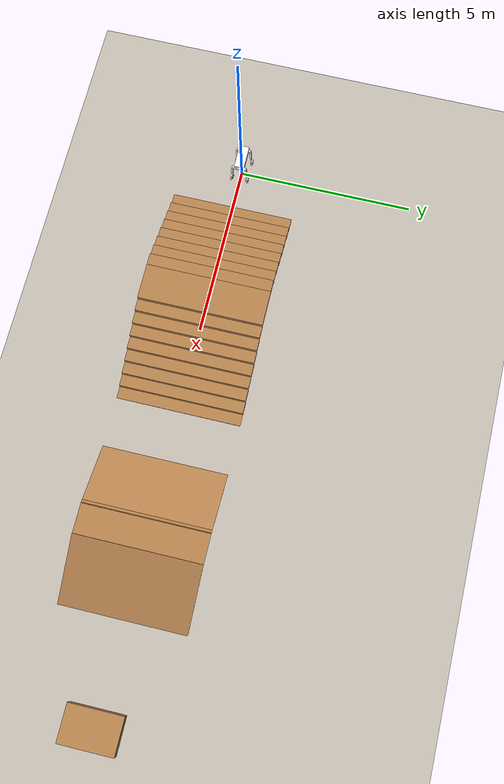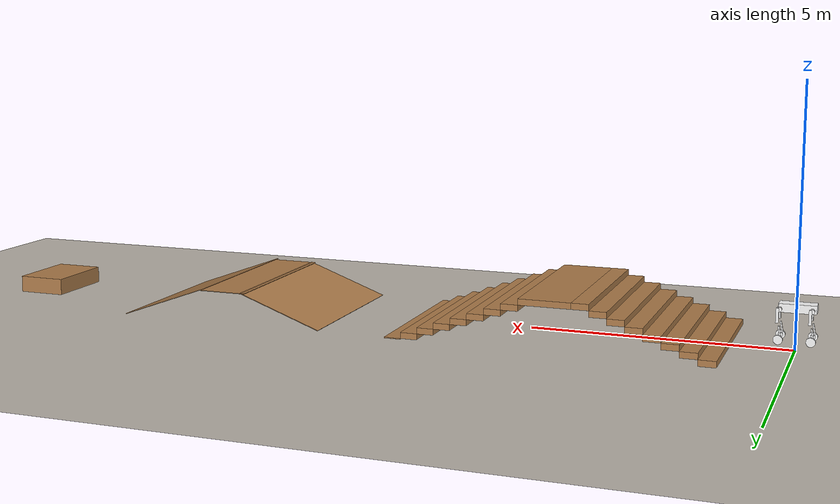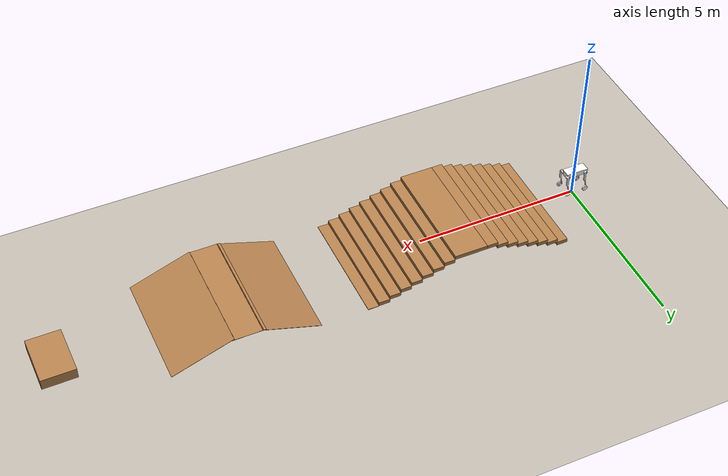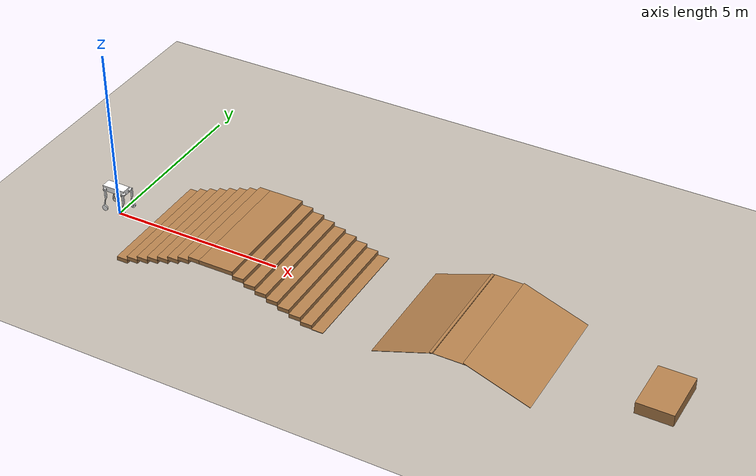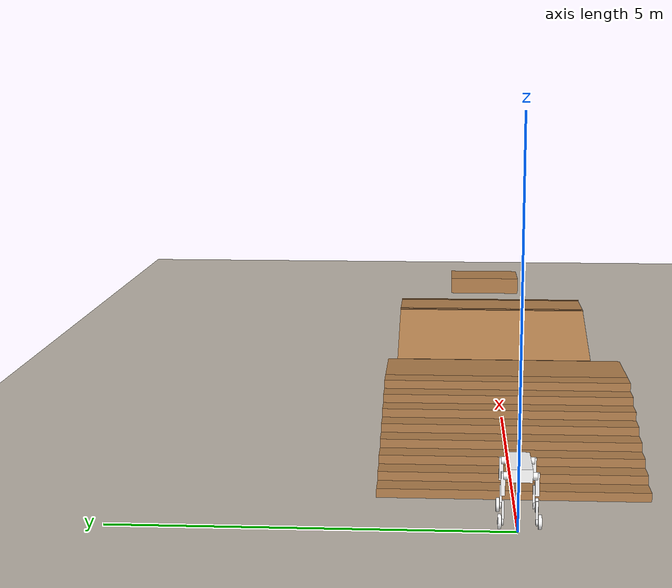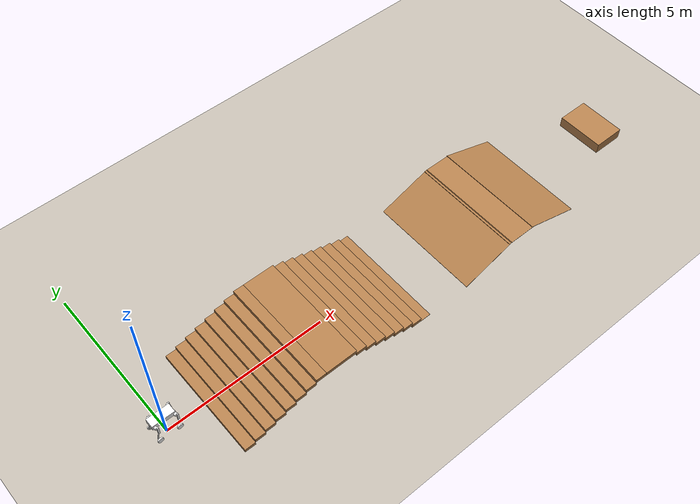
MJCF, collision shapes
<mujoco model="quad144w scene">
  <include file="sduog144_V2_s_cad.xml" />

  <statistic center="1.0 0.7 1.0" extent="0.8" />

  <visual>
    <headlight
      diffuse="0.6 0.6 0.6"
      ambient="0.15 0.15 0.15"
      specular="0.9 0.9 0.9"
    />

    <rgba haze="0.0 0.0 0.0 1" />

    <global azimuth="-140" elevation="-20" />
  </visual>

  <asset>
    <texture
      type="skybox"
      builtin="flat"
      rgb1="1 1 1"
      rgb2="1 1 1"
      width="512"
      height="3072"
    />

    <texture name="floor_tex" type="2d" file="flooring2.png" />

    <material
      name="floor_mat"
      texture="floor_tex"
      texuniform="true"
      texrepeat="1 1"
      reflectance="0.2"
    />

    <texture
      type="2d"
      name="groundplane"
      builtin="checker"
      mark="edge"
      rgb1="0.2 0.3 0.4"
      rgb2="0.1 0.2 0.3"
      markrgb="0.8 0.8 0.8"
      width="300"
      height="300"
    />

    <material
      name="groundplane"
      texture="groundplane"
      texuniform="true"
      texrepeat="5 5"
      reflectance="0.2"
    />

    <texture name="wood_tex" type="2d" file="wood_texture.png" />

    <material
      name="wood"
      texture="wood_tex"
      texuniform="true"
      texrepeat="2 2"
      specular="0.3"
      shininess="0.1"
      reflectance="0.1"
    />
  </asset>

  <worldbody>
    <light pos="1 0 3.5" dir="0 0 -1" directional="true" />

    <geom
      name="floor"
      size="0 0 0.05"
      type="plane"
      material="floor_mat"
      friction="1.2 0.02 0.001"
      condim="4"
    />

    <!-- 上楼：12cm 台阶 -->
    <geom pos="1.33 0.0 0.06" type="box" size="0.165 1.75 0.06" material="wood" friction="1.2 0.02 0.001" condim="4" />
    <geom pos="1.66 0.0 0.18" type="box" size="0.165 1.75 0.06" material="wood" friction="1.2 0.02 0.001" condim="4" />
    <geom pos="1.99 0.0 0.30" type="box" size="0.165 1.75 0.06" material="wood" friction="1.2 0.02 0.001" condim="4" />
    <geom pos="2.32 0.0 0.42" type="box" size="0.165 1.75 0.06" material="wood" friction="1.2 0.02 0.001" condim="4" />
    <geom pos="2.65 0.0 0.54" type="box" size="0.165 1.75 0.06" material="wood" friction="1.2 0.02 0.001" condim="4" />
    <geom pos="2.98 0.0 0.66" type="box" size="0.165 1.75 0.06" material="wood" friction="1.2 0.02 0.001" condim="4" />
    <geom pos="3.31 0.0 0.78" type="box" size="0.165 1.75 0.06" material="wood" friction="1.2 0.02 0.001" condim="4" />
    <geom pos="3.64 0.0 0.90" type="box" size="0.165 1.75 0.06" material="wood" friction="1.2 0.02 0.001" condim="4" />

    <!-- 顶部平台 -->
    <geom pos="4.305 0.0 0.90" type="box" size="0.5 1.75 0.06" material="wood" friction="1.2 0.02 0.001" condim="4" />

    <!-- 下楼 -->
    <geom pos="4.97 0.0 0.78" type="box" size="0.165 1.75 0.06" material="wood" friction="1.2 0.02 0.001" condim="4" />
    <geom pos="5.30 0.0 0.66" type="box" size="0.165 1.75 0.06" material="wood" friction="1.2 0.02 0.001" condim="4" />
    <geom pos="5.63 0.0 0.54" type="box" size="0.165 1.75 0.06" material="wood" friction="1.2 0.02 0.001" condim="4" />
    <geom pos="5.96 0.0 0.42" type="box" size="0.165 1.75 0.06" material="wood" friction="1.2 0.02 0.001" condim="4" />
    <geom pos="6.29 0.0 0.30" type="box" size="0.165 1.75 0.06" material="wood" friction="1.2 0.02 0.001" condim="4" />
    <geom pos="6.62 0.0 0.18" type="box" size="0.165 1.75 0.06" material="wood" friction="1.2 0.02 0.001" condim="4" />
    <geom pos="6.95 0.0 0.06" type="box" size="0.165 1.75 0.06" material="wood" friction="1.2 0.02 0.001" condim="4" />
    <geom pos="7.28 0.0 -0.06" type="box" size="0.165 1.75 0.06" material="wood" friction="1.2 0.02 0.001" condim="4" />

    <!-- 斜坡 -->
    <geom
      pos="9.679243225836387 0.0 0.305"
      type="box"
      size="0.8992432258363866 1.75 0.005"
      quat="0.984807753012208 0.0 -0.17364817766693033 0.0"
      material="wood"
      friction="1.2 0.02 0.001"
      condim="4"
    />

    <!-- 平台 -->
    <geom
      pos="10.928486451672775 0.0 0.605"
      type="box"
      size="0.5 1.75 0.005"
      quat="1.0 0.0 0.0 0.0"
      material="wood"
      friction="1.2 0.02 0.001"
      condim="4"
    />

    <!-- 下坡 -->
    <geom
      pos="12.252729677509162 0.0 0.305"
      type="box"
      size="0.9742432258363867 1.75 0.005"
      quat="0.984807753012208 0.0 0.17364817766693033 0.0"
      material="wood"
      friction="1.2 0.02 0.001"
      condim="4"
    />

    <!-- 障碍台 -->
    <geom
      pos="15.876972903345548 0.0 0.17"
      type="box"
      size="0.5 0.75 0.17"
      quat="1.0 0.0 0.0 0.0"
      material="wood"
      friction="1.2 0.02 0.001"
      condim="4"
    />
  </worldbody>
</mujoco>

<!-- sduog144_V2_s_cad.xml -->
<mujoco model="sduog_144_V2_s">
  <compiler angle="radian" meshdir="meshes/"/>

  <asset>
    <mesh name="base" file="base.STL"/>
    <mesh name="FL_hip_Link" file="FL_hip_Link.STL"/>
    <mesh name="FL_thigh_Link" file="FL_thigh_Link.STL"/>
    <mesh name="L_calf_s" file="L_calf_s.STL"/>
    <mesh name="L_wheel" file="L_wheel.STL"/>
    <mesh name="FR_hip_Link" file="FR_hip_Link.STL"/>
    <mesh name="FR_thigh_Link" file="FR_thigh_Link.STL"/>
    <mesh name="R_calf_s" file="R_calf_s.STL"/>
    <mesh name="R_wheel" file="R_wheel.STL"/>
    <mesh name="RL_hip_Link" file="RL_hip_Link.STL"/>
    <mesh name="RL_thigh_Link" file="RL_thigh_Link.STL"/>
    <mesh name="RR_hip_Link" file="RR_hip_Link.STL"/>
    <mesh name="RR_thigh_Link" file="RR_thigh_Link.STL"/>
  </asset>

  <worldbody>
    <body name="base_link" pos="0 0 0.8" quat="0 0 0 1">
      <inertial pos="0.03371 0.003791 0.010576" quat="0.0139079 0.690038 0.0103233 0.723566" mass="17.9" diaginertia="0.79033 0.719639 0.159172"/>
      <joint name="floating_base_joint" type="free" limited="false" actuatorfrclimited="false"/>
      <geom type="mesh" contype="0" conaffinity="0" group="1" density="0" rgba="1 1 1 1" mesh="base"/>
      <!-- Lightweight visible/collision proxy used when high-poly mesh visuals are hidden. -->
      <geom name="base_collision" type="box" pos="0.03 0 0.02" size="0.34 0.14 0.08" rgba="1 1 1 1"/>
      <body name="FL_hip_Link" pos="0.2915 0.0731 0">
        <inertial pos="-0.008296 0.008609 0" quat="0.510415 0.49568 0.502887 0.490798" mass="1.92" diaginertia="0.00321875 0.00247147 0.00184878"/>
        <joint name="FL_hip_joint" pos="0 0 0" axis="1 0 0" range="-0.488 0.78" actuatorfrcrange="-144 144"/>
        <geom type="mesh" contype="0" conaffinity="0" group="1" density="0" rgba="1 1 1 1" mesh="FL_hip_Link"/>
        <geom name="FL_hip_proxy" type="cylinder" pos="0 0.063 0" quat="0.707107 0.707107 0 0" size="0.045 0.063" rgba="1 1 1 1"/>
        <body name="FL_thigh_Link" pos="0 0.126 0">
          <inertial pos="-0.007357 -0.025269 -0.049709" quat="0.806374 0.0890027 -0.0024002 0.584665" mass="3.03643" diaginertia="0.0299404 0.0292388 0.00374588"/>
          <joint name="FL_thigh_joint" pos="0 0 0" axis="0 -1 0" range="-2.55 0.554" actuatorfrcrange="-144 144"/>
          <geom type="mesh" contype="0" conaffinity="0" group="1" density="0" rgba="1 1 1 1" mesh="FL_thigh_Link"/>
          <geom size="0.025 0.025 0.14" pos="-0.03 0 -0.11" type="box" rgba="1 1 1 1"/>
          <body name="FL_calf_Link" pos="0 0 -0.28">
            <inertial pos="0.00864 0.00147 -0.164922" quat="0.706368 -0.000364299 -0.00568496 0.707822" mass="0.596381" diaginertia="0.00752241 0.0072565 0.000353089"/>
            <joint name="FL_calf_joint" pos="0 0 0" axis="0 -1 0" range="1.21 2.8" actuatorfrcrange="-144 144"/>
            <geom type="mesh" contype="0" conaffinity="0" group="1" density="0" rgba="1 1 1 1" mesh="L_calf_s"/>
            <geom size="0.0125 0.0125 0.105" pos="0.02 0 -0.13" quat="0.995004 0 -0.0998334 0" type="box" rgba="1 1 1 1"/>
            <geom size="0.046 0.01" pos="0 0 -0.28" quat="0.707107 0.707107 0 0" type="cylinder" rgba="1 1 1 1"/>
            <body name="FL_wheel" pos="0 0.03725 -0.28">
              <inertial pos="-0.012577 -0.005886 0.003253" quat="0.376737 0.551606 0.613126 0.421754" mass="1.423" diaginertia="0.00690084 0.00535689 0.00216227"/>
              <joint name="FL_wheel_joint" pos="0 0 0" axis="0 1 0" range="-999999 999999" actuatorfrcrange="-20 20"/>
              <geom type="mesh" contype="0" conaffinity="0" group="1" density="0" rgba="1 1 1 1" mesh="L_wheel"/>
              <geom size="0.086 0.01875" quat="0.707107 0.707107 0 0" type="cylinder" rgba="1 1 1 1"/>
            </body>
          </body>
        </body>
      </body>
      <body name="FR_hip_Link" pos="0.2915 -0.0731 0">
        <inertial pos="-0.008296 -0.008609 0" quat="0.490798 0.502887 0.49568 0.510415" mass="1.92" diaginertia="0.00321875 0.00247147 0.00184878"/>
        <joint name="FR_hip_joint" pos="0 0 0" axis="1 0 0" range="-0.78 0.488" actuatorfrcrange="-144 144"/>
        <geom type="mesh" contype="0" conaffinity="0" group="1" density="0" rgba="1 1 1 1" mesh="FR_hip_Link"/>
        <geom name="FR_hip_proxy" type="cylinder" pos="0 -0.063 0" quat="0.707107 0.707107 0 0" size="0.045 0.063" rgba="1 1 1 1"/>
        <body name="FR_thigh_Link" pos="0 -0.126 0">
          <inertial pos="-0.008018 0.025243 -0.044242" quat="0.554391 -0.000263042 0.0863138 0.827768" mass="3.03643" diaginertia="0.0277969 0.0268821 0.00397395"/>
          <joint name="FR_thigh_joint" pos="0 0 0" axis="0 -1 0" range="-2.55 0.554" actuatorfrcrange="-144 144"/>
          <geom type="mesh" contype="0" conaffinity="0" group="1" density="0" rgba="1 1 1 1" mesh="FR_thigh_Link"/>
          <geom size="0.025 0.025 0.14" pos="-0.03 0 -0.11" type="box" rgba="1 1 1 1"/>
          <body name="FR_calf_Link" pos="0 0 -0.28">
            <inertial pos="0.00864 -0.00147 -0.164922" quat="0.707822 -0.00568901 -0.000364631 0.706368" mass="0.596381" diaginertia="0.00751741 0.0072515 0.000353088"/>
            <joint name="FR_calf_joint" pos="0 0 0" axis="0 -1 0" range="1.21 2.8" actuatorfrcrange="-144 144"/>
            <geom type="mesh" contype="0" conaffinity="0" group="1" density="0" rgba="1 1 1 1" mesh="R_calf_s"/>
            <geom size="0.0125 0.0125 0.105" pos="0.02 0 -0.13" quat="0.995004 0 -0.0998334 0" type="box" rgba="1 1 1 1"/>
            <geom size="0.046 0.01" pos="0 0 -0.28" quat="0.707107 0.707107 0 0" type="cylinder" rgba="1 1 1 1"/>
            <body name="FR_wheel" pos="0 -0.03725 -0.28">
              <inertial pos="0.006747 0.005886 0.011102" quat="0.669735 0.118378 0.183167 0.709854" mass="1.423" diaginertia="0.00690078 0.00535627 0.00216195"/>
              <joint name="FR_wheel_joint" pos="0 0 0" axis="0 1 0" range="-999999 999999" actuatorfrcrange="-20 20"/>
              <geom type="mesh" contype="0" conaffinity="0" group="1" density="0" rgba="1 1 1 1" mesh="R_wheel"/>
              <geom size="0.086 0.01875" quat="0.707107 0.707107 0 0" type="cylinder" rgba="1 1 1 1"/>
            </body>
          </body>
        </body>
      </body>
      <body name="RL_hip_Link" pos="-0.2915 0.0731 0">
        <inertial pos="0.008296 0.008609 0" quat="0.502887 0.490798 0.510415 0.49568" mass="1.92" diaginertia="0.00321875 0.00247147 0.00184878"/>
        <joint name="RL_hip_joint" pos="0 0 0" axis="1 0 0" range="-0.488 0.78" actuatorfrcrange="-144 144"/>
        <geom type="mesh" contype="0" conaffinity="0" group="1" density="0" rgba="1 1 1 1" mesh="RL_hip_Link"/>
        <geom name="RL_hip_proxy" type="cylinder" pos="0 0.063 0" quat="0.707107 0.707107 0 0" size="0.045 0.063" rgba="1 1 1 1"/>
        <body name="RL_thigh_Link" pos="0 0.126 0">
          <inertial pos="-0.007357 -0.025269 -0.049709" quat="0.806374 0.0890027 -0.0024002 0.584665" mass="3.03643" diaginertia="0.0299404 0.0292388 0.00374588"/>
          <joint name="RL_thigh_joint" pos="0 0 0" axis="0 -1 0" range="-2.55 0.554" actuatorfrcrange="-144 144"/>
          <geom type="mesh" contype="0" conaffinity="0" group="1" density="0" rgba="1 1 1 1" mesh="RL_thigh_Link"/>
          <geom size="0.025 0.025 0.14" pos="-0.03 0 -0.11" type="box" rgba="1 1 1 1"/>
          <body name="RL_calf_Link" pos="0 0 -0.28">
            <inertial pos="0.00864 0.00147 -0.164922" quat="0.706368 -0.000364299 -0.00568496 0.707822" mass="0.596381" diaginertia="0.00752241 0.0072565 0.000353089"/>
            <joint name="RL_calf_joint" pos="0 0 0" axis="0 -1 0" range="1.21 2.8" actuatorfrcrange="-144 144"/>
            <geom type="mesh" contype="0" conaffinity="0" group="1" density="0" rgba="1 1 1 1" mesh="L_calf_s"/>
            <geom size="0.0125 0.0125 0.105" pos="0.02 0 -0.13" quat="0.995004 0 -0.0998334 0" type="box" rgba="1 1 1 1"/>
            <geom size="0.046 0.01" pos="0 0 -0.28" quat="0.707107 0.707107 0 0" type="cylinder" rgba="1 1 1 1"/>
            <body name="RL_wheel" pos="0 0.03725 -0.28">
              <inertial pos="-0.012577 -0.005886 0.003253" quat="0.376737 0.551606 0.613126 0.421754" mass="1.423" diaginertia="0.00690084 0.00535689 0.00216227"/>
              <joint name="RL_wheel_joint" pos="0 0 0" axis="0 1 0" range="-999999 999999" actuatorfrcrange="-20 20"/>
              <geom type="mesh" contype="0" conaffinity="0" group="1" density="0" rgba="1 1 1 1" mesh="L_wheel"/>
              <geom size="0.086 0.01875" quat="0.707107 0.707107 0 0" type="cylinder" rgba="1 1 1 1"/>
            </body>
          </body>
        </body>
      </body>
      <body name="RR_hip_Link" pos="-0.2915 -0.0731 0">
        <inertial pos="0.008296 -0.008609 0" quat="0.49568 0.510415 0.490798 0.502887" mass="1.92" diaginertia="0.00321875 0.00247147 0.00184878"/>
        <joint name="RR_hip_joint" pos="0 0 0" axis="1 0 0" range="-0.78 0.488" actuatorfrcrange="-144 144"/>
        <geom type="mesh" contype="0" conaffinity="0" group="1" density="0" rgba="1 1 1 1" mesh="RR_hip_Link"/>
        <geom name="RR_hip_proxy" type="cylinder" pos="0 -0.063 0" quat="0.707107 0.707107 0 0" size="0.045 0.063" rgba="1 1 1 1"/>
        <body name="RR_thigh_Link" pos="0 -0.126 0">
          <inertial pos="-0.008018 0.025243 -0.044242" quat="0.554391 -0.000263042 0.0863138 0.827768" mass="3.03643" diaginertia="0.0277969 0.0268821 0.00397395"/>
          <joint name="RR_thigh_joint" pos="0 0 0" axis="0 -1 0" range="-2.55 0.554" actuatorfrcrange="-144 144"/>
          <geom type="mesh" contype="0" conaffinity="0" group="1" density="0" rgba="1 1 1 1" mesh="RR_thigh_Link"/>
          <geom size="0.025 0.025 0.14" pos="-0.03 0 -0.11" type="box" rgba="1 1 1 1"/>
          <body name="RR_calf_Link" pos="0 0 -0.28">
            <inertial pos="0.00864 -0.00147 -0.164922" quat="0.707822 -0.00568901 -0.000364631 0.706368" mass="0.596" diaginertia="0.00751741 0.0072515 0.000353088"/>
            <joint name="RR_calf_joint" pos="0 0 0" axis="0 -1 0" range="1.21 2.8" actuatorfrcrange="-144 144"/>
            <geom type="mesh" contype="0" conaffinity="0" group="1" density="0" rgba="1 1 1 1" mesh="R_calf_s"/>
            <geom size="0.0125 0.0125 0.105" pos="0.02 0 -0.13" quat="0.995004 0 -0.0998334 0" type="box" rgba="1 1 1 1"/>
            <geom size="0.046 0.01" pos="0 0 -0.28" quat="0.707107 0.707107 0 0" type="cylinder" rgba="1 1 1 1"/>
            <body name="RR_wheel" pos="0 -0.03725 -0.28">
              <inertial pos="0.006747 0.005886 0.011102" quat="0.669735 0.118378 0.183167 0.709854" mass="1.423" diaginertia="0.00690078 0.00535627 0.00216195"/>
              <joint name="RR_wheel_joint" pos="0 0 0" axis="0 1 0" range="-999999 999999" actuatorfrcrange="-20 20"/>
              <geom type="mesh" contype="0" conaffinity="0" group="1" density="0" rgba="1 1 1 1" mesh="R_wheel"/>
              <geom size="0.086 0.01875" quat="0.707107 0.707107 0 0" type="cylinder" rgba="1 1 1 1"/>
            </body>
          </body>
        </body>
      </body>
    </body>
  </worldbody>
  <actuator>
    <motor name="FL_hip_joint" joint="FL_hip_joint"/>
    <motor name="FL_thigh_joint" joint="FL_thigh_joint"/>
    <motor name="FL_calf_joint" joint="FL_calf_joint"/>
    <motor name="FL_wheel_joint" joint="FL_wheel_joint"/>
    <motor name="FR_hip_joint" joint="FR_hip_joint"/>
    <motor name="FR_thigh_joint" joint="FR_thigh_joint"/>
    <motor name="FR_calf_joint" joint="FR_calf_joint"/>
    <motor name="FR_wheel_joint" joint="FR_wheel_joint"/>
    <motor name="RL_hip_joint" joint="RL_hip_joint"/>
    <motor name="RL_thigh_joint" joint="RL_thigh_joint"/>
    <motor name="RL_calf_joint" joint="RL_calf_joint"/>
    <motor name="RL_wheel_joint" joint="RL_wheel_joint"/>
    <motor name="RR_hip_joint" joint="RR_hip_joint"/>
    <motor name="RR_thigh_joint" joint="RR_thigh_joint"/>
    <motor name="RR_calf_joint" joint="RR_calf_joint"/>
    <motor name="RR_wheel_joint" joint="RR_wheel_joint"/>
  </actuator>
</mujoco>
